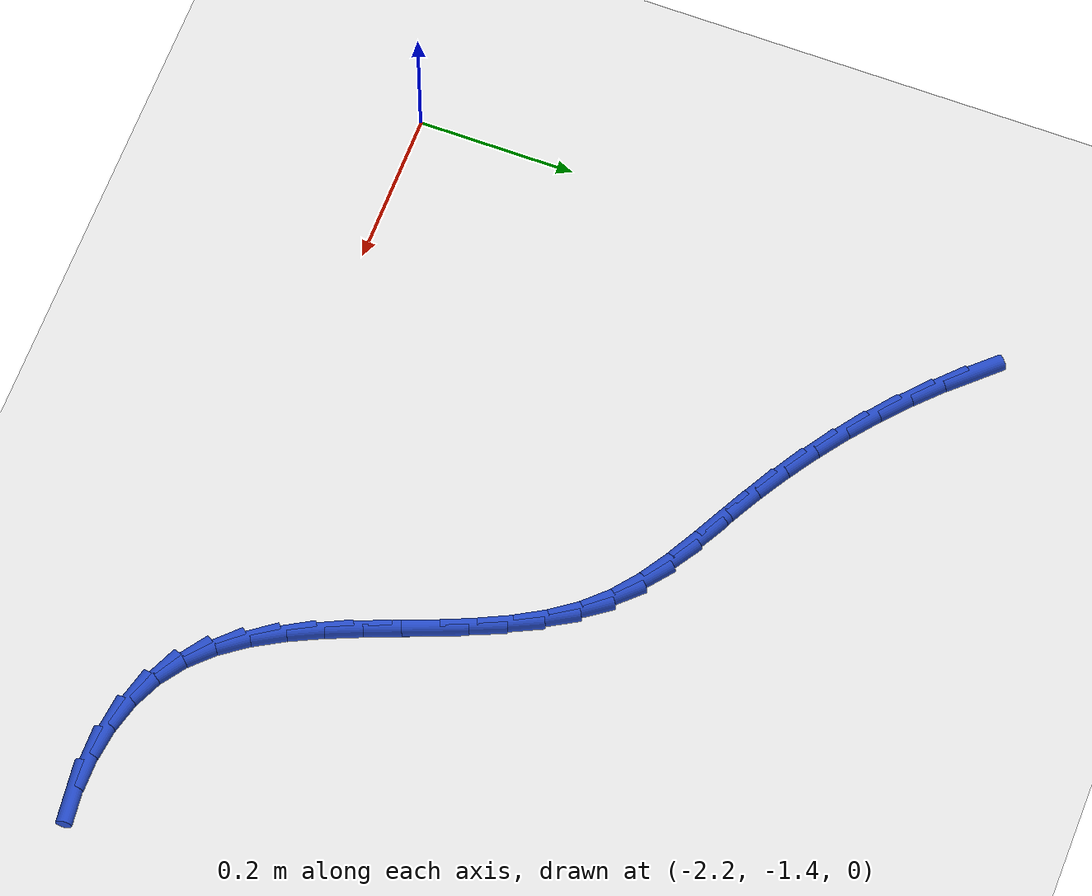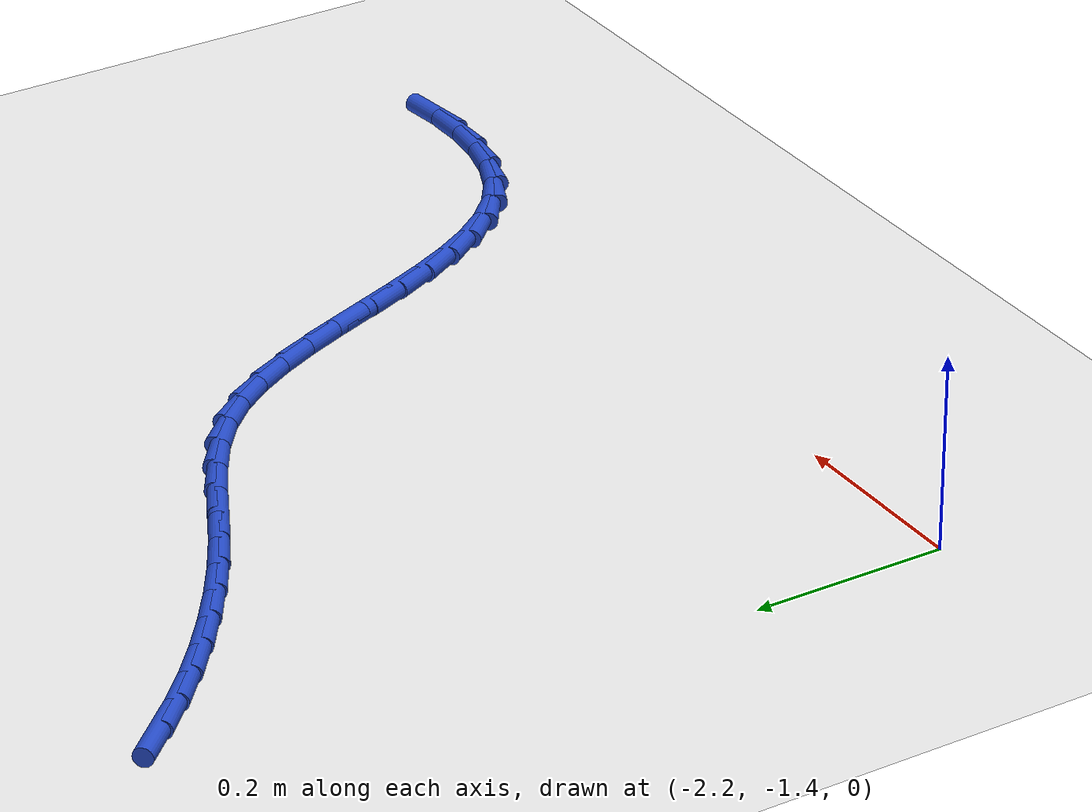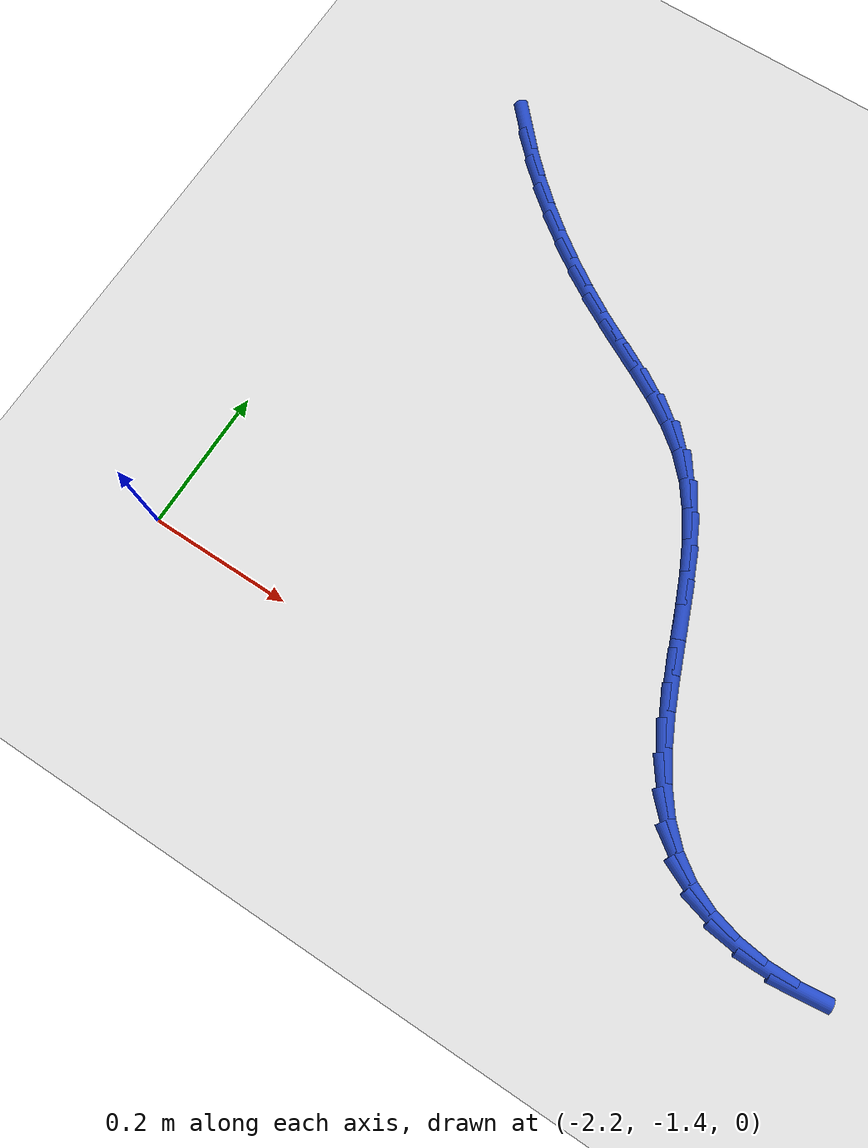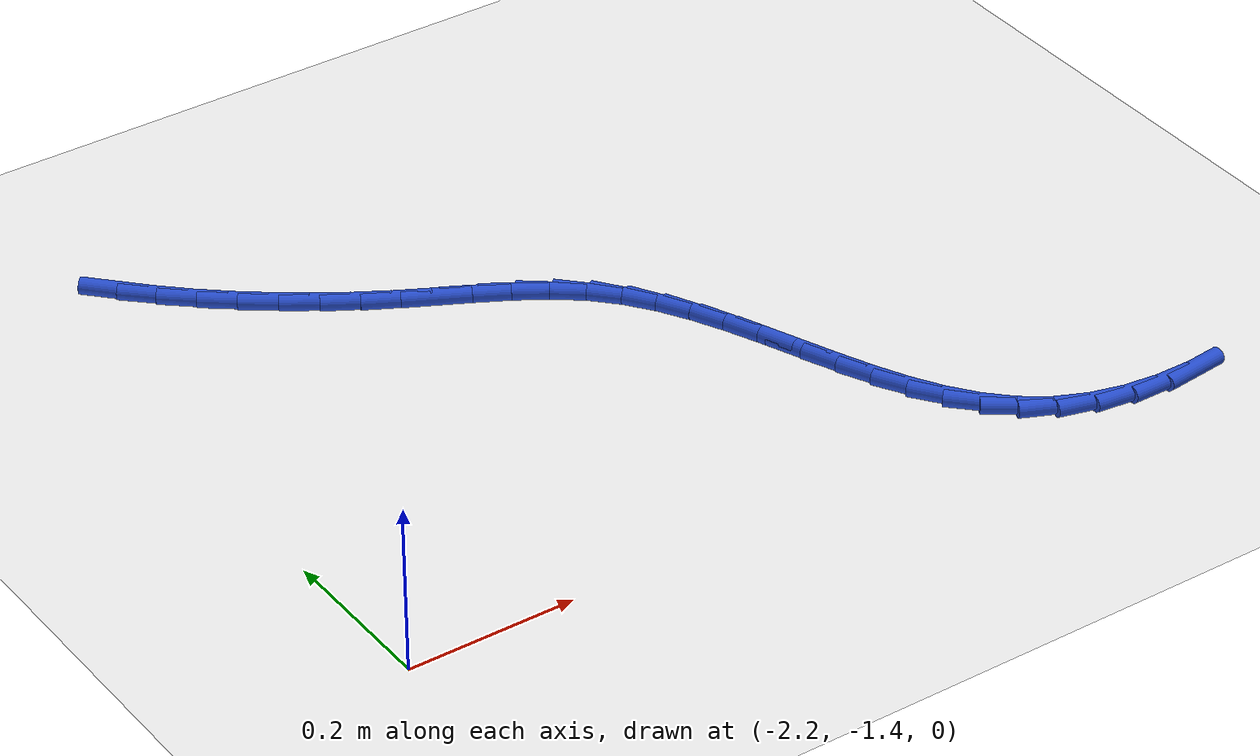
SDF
<sdf version="1.6">
 <world name="default">
  <model name="ground_plane">
   <static>1</static>
   <link name="link">
    <collision name="collision">
     <geometry><plane><normal>0 0 1</normal><size>100 100</size></plane></geometry>
     <surface><friction><ode><mu>100</mu><mu2>50</mu2></ode></friction></surface>
    </collision>
    <visual name="visual">
     <cast_shadows>0</cast_shadows>
     <geometry><plane><normal>0 0 1</normal><size>100 100</size></plane></geometry>
     <material>
      <script><uri>file://media/materials/scripts/gazebo.material</uri><name>Gazebo/WhiteGlow</name></script>
     </material>
    </visual>
   </link>
  </model>
  <model name="line">
   <link name="link_104">
    <pose>-2.1065508490633804 -0.6455041608084631 0.01 0 1.57 -0.8183769520715151</pose>
    <collision name="collision">
     <geometry><cylinder><radius>0.01</radius><length>0.08</length></cylinder></geometry>
    </collision>
    <visual name="visual">
     <material>
      <script><name>Gazebo/Blue</name><uri>file://media/materials/scripts/gazebo.material</uri></script>
     </material>
     <geometry><cylinder><radius>0.01</radius><length>0.08</length></cylinder></geometry>
    </visual>
   </link>
   <link name="link_105">
    <pose>-2.075953822564235 -0.6781889002130201 0.01 0 1.57 -0.7646697553903216</pose>
    <collision name="collision">
     <geometry><cylinder><radius>0.01</radius><length>0.08</length></cylinder></geometry>
    </collision>
    <visual name="visual">
     <material>
      <script><name>Gazebo/Blue</name><uri>file://media/materials/scripts/gazebo.material</uri></script>
     </material>
     <geometry><cylinder><radius>0.01</radius><length>0.08</length></cylinder></geometry>
    </visual>
   </link>
   <link name="link_106">
    <pose>-2.0433260640352873 -0.7094912985401228 0.01 0 1.57 -0.7142009931752987</pose>
    <collision name="collision">
     <geometry><cylinder><radius>0.01</radius><length>0.08</length></cylinder></geometry>
    </collision>
    <visual name="visual">
     <material>
      <script><name>Gazebo/Blue</name><uri>file://media/materials/scripts/gazebo.material</uri></script>
     </material>
     <geometry><cylinder><radius>0.01</radius><length>0.08</length></cylinder></geometry>
    </visual>
   </link>
   <link name="link_107">
    <pose>-2.0089268016478283 -0.7393106370503572 0.01 0 1.57 -0.6663023284555586</pose>
    <collision name="collision">
     <geometry><cylinder><radius>0.01</radius><length>0.08</length></cylinder></geometry>
    </collision>
    <visual name="visual">
     <material>
      <script><name>Gazebo/Blue</name><uri>file://media/materials/scripts/gazebo.material</uri></script>
     </material>
     <geometry><cylinder><radius>0.01</radius><length>0.08</length></cylinder></geometry>
    </visual>
   </link>
   <link name="link_108">
    <pose>-1.9730152635731528 -0.76754619700431 0.01 0 1.57 -0.6203373200466021</pose>
    <collision name="collision">
     <geometry><cylinder><radius>0.01</radius><length>0.08</length></cylinder></geometry>
    </collision>
    <visual name="visual">
     <material>
      <script><name>Gazebo/Blue</name><uri>file://media/materials/scripts/gazebo.material</uri></script>
     </material>
     <geometry><cylinder><radius>0.01</radius><length>0.08</length></cylinder></geometry>
    </visual>
   </link>
   <link name="link_109">
    <pose>-1.9358506779825528 -0.7940972596625688 0.01 0 1.57 -0.5756911222692556</pose>
    <collision name="collision">
     <geometry><cylinder><radius>0.01</radius><length>0.08</length></cylinder></geometry>
    </collision>
    <visual name="visual">
     <material>
      <script><name>Gazebo/Blue</name><uri>file://media/materials/scripts/gazebo.material</uri></script>
     </material>
     <geometry><cylinder><radius>0.01</radius><length>0.08</length></cylinder></geometry>
    </visual>
   </link>
   <link name="link_110">
    <pose>-1.8976922730473231 -0.818863106285719 0.01 0 1.57 -0.5317561357764368</pose>
    <collision name="collision">
     <geometry><cylinder><radius>0.01</radius><length>0.08</length></cylinder></geometry>
    </collision>
    <visual name="visual">
     <material>
      <script><name>Gazebo/Blue</name><uri>file://media/materials/scripts/gazebo.material</uri></script>
     </material>
     <geometry><cylinder><radius>0.01</radius><length>0.08</length></cylinder></geometry>
    </visual>
   </link>
   <link name="link_111">
    <pose>-1.858799276938755 -0.8417430181343479 0.01 0 1.57 -0.4919786350246969</pose>
    <collision name="collision">
     <geometry><cylinder><radius>0.01</radius><length>0.08</length></cylinder></geometry>
    </collision>
    <visual name="visual">
     <material>
      <script><name>Gazebo/Blue</name><uri>file://media/materials/scripts/gazebo.material</uri></script>
     </material>
     <geometry><cylinder><radius>0.01</radius><length>0.08</length></cylinder></geometry>
    </visual>
   </link>
   <link name="link_112">
    <pose>-1.8195068649801824 -0.862801094681499 0.01 0 1.57 -0.47905748285766386</pose>
    <collision name="collision">
     <geometry><cylinder><radius>0.01</radius><length>0.08</length></cylinder></geometry>
    </collision>
    <visual name="visual">
     <material>
      <script><name>Gazebo/Blue</name><uri>file://media/materials/scripts/gazebo.material</uri></script>
     </material>
     <geometry><cylinder><radius>0.01</radius><length>0.08</length></cylinder></geometry>
    </visual>
   </link>
   <link name="link_113">
    <pose>-1.7805748263372088 -0.883022919518949 0.01 0 1.57 -0.5023504802171354</pose>
    <collision name="collision">
     <geometry><cylinder><radius>0.01</radius><length>0.08</length></cylinder></geometry>
    </collision>
    <visual name="visual">
     <material>
      <script><name>Gazebo/Blue</name><uri>file://media/materials/scripts/gazebo.material</uri></script>
     </material>
     <geometry><cylinder><radius>0.01</radius><length>0.08</length></cylinder></geometry>
    </visual>
   </link>
   <link name="link_114">
    <pose>-1.7429104444274133 -0.9037141638033872 0.01 0 1.57 -0.5643702869260548</pose>
    <collision name="collision">
     <geometry><cylinder><radius>0.01</radius><length>0.08</length></cylinder></geometry>
    </collision>
    <visual name="visual">
     <material>
      <script><name>Gazebo/Blue</name><uri>file://media/materials/scripts/gazebo.material</uri></script>
     </material>
     <geometry><cylinder><radius>0.01</radius><length>0.08</length></cylinder></geometry>
    </visual>
   </link>
   <link name="link_115">
    <pose>-1.7074211497469303 -0.9261808178769327 0.01 0 1.57 -0.6676000703960445</pose>
    <collision name="collision">
     <geometry><cylinder><radius>0.01</radius><length>0.08</length></cylinder></geometry>
    </collision>
    <visual name="visual">
     <material>
      <script><name>Gazebo/Blue</name><uri>file://media/materials/scripts/gazebo.material</uri></script>
     </material>
     <geometry><cylinder><radius>0.01</radius><length>0.08</length></cylinder></geometry>
    </visual>
   </link>
   <link name="link_116">
    <pose>-1.675014372791893 -0.9517288720817023 0.01 0 1.57 -0.8086981442681749</pose>
    <collision name="collision">
     <geometry><cylinder><radius>0.01</radius><length>0.08</length></cylinder></geometry>
    </collision>
    <visual name="visual">
     <material>
      <script><name>Gazebo/Blue</name><uri>file://media/materials/scripts/gazebo.material</uri></script>
     </material>
     <geometry><cylinder><radius>0.01</radius><length>0.08</length></cylinder></geometry>
    </visual>
   </link>
   <link name="link_117">
    <pose>-1.6465287582404404 -0.981573833948397 0.01 0 1.57 -0.9454567257333134</pose>
    <collision name="collision">
     <geometry><cylinder><radius>0.01</radius><length>0.08</length></cylinder></geometry>
    </collision>
    <visual name="visual">
     <material>
      <script><name>Gazebo/Blue</name><uri>file://media/materials/scripts/gazebo.material</uri></script>
     </material>
     <geometry><cylinder><radius>0.01</radius><length>0.08</length></cylinder></geometry>
    </visual>
   </link>
   <link name="link_118">
    <pose>-1.6218785958696167 -1.0157152884144247 0.01 0 1.57 -1.0497499153755094</pose>
    <collision name="collision">
     <geometry><cylinder><radius>0.01</radius><length>0.08</length></cylinder></geometry>
    </collision>
    <visual name="visual">
     <material>
      <script><name>Gazebo/Blue</name><uri>file://media/materials/scripts/gazebo.material</uri></script>
     </material>
     <geometry><cylinder><radius>0.01</radius><length>0.08</length></cylinder></geometry>
    </visual>
   </link>
   <link name="link_119">
    <pose>-1.6003167012785815 -1.0532826985659216 0.01 0 1.57 -1.1235747946625187</pose>
    <collision name="collision">
     <geometry><cylinder><radius>0.01</radius><length>0.08</length></cylinder></geometry>
    </collision>
    <visual name="visual">
     <material>
      <script><name>Gazebo/Blue</name><uri>file://media/materials/scripts/gazebo.material</uri></script>
     </material>
     <geometry><cylinder><radius>0.01</radius><length>0.08</length></cylinder></geometry>
    </visual>
   </link>
   <link name="link_120">
    <pose>-1.581081532852161 -1.093386641603027 0.01 0 1.57 -1.170432225121151</pose>
    <collision name="collision">
     <geometry><cylinder><radius>0.01</radius><length>0.08</length></cylinder></geometry>
    </collision>
    <visual name="visual">
     <material>
      <script><name>Gazebo/Blue</name><uri>file://media/materials/scripts/gazebo.material</uri></script>
     </material>
     <geometry><cylinder><radius>0.01</radius><length>0.08</length></cylinder></geometry>
    </visual>
   </link>
   <link name="link_121">
    <pose>-1.5634115489751828 -1.1351376947258778 0.01 0 1.57 -1.1930745217170589</pose>
    <collision name="collision">
     <geometry><cylinder><radius>0.01</radius><length>0.08</length></cylinder></geometry>
    </collision>
    <visual name="visual">
     <material>
      <script><name>Gazebo/Blue</name><uri>file://media/materials/scripts/gazebo.material</uri></script>
     </material>
     <geometry><cylinder><radius>0.01</radius><length>0.08</length></cylinder></geometry>
    </visual>
   </link>
   <link name="link_122">
    <pose>-1.5465452080324726 -1.1776464351346134 0.01 0 1.57 -1.1928672365322783</pose>
    <collision name="collision">
     <geometry><cylinder><radius>0.01</radius><length>0.08</length></cylinder></geometry>
    </collision>
    <visual name="visual">
     <material>
      <script><name>Gazebo/Blue</name><uri>file://media/materials/scripts/gazebo.material</uri></script>
     </material>
     <geometry><cylinder><radius>0.01</radius><length>0.08</length></cylinder></geometry>
    </visual>
   </link>
   <link name="link_123">
    <pose>-1.529720968408858 -1.2200234400293721 0.01 0 1.57 -1.1695926246144555</pose>
    <collision name="collision">
     <geometry><cylinder><radius>0.01</radius><length>0.08</length></cylinder></geometry>
    </collision>
    <visual name="visual">
     <material>
      <script><name>Gazebo/Blue</name><uri>file://media/materials/scripts/gazebo.material</uri></script>
     </material>
     <geometry><cylinder><radius>0.01</radius><length>0.08</length></cylinder></geometry>
    </visual>
   </link>
   <link name="link_124">
    <pose>-1.512177288489165 -1.2613792866102929 0.01 0 1.57 -1.121404393563439</pose>
    <collision name="collision">
     <geometry><cylinder><radius>0.01</radius><length>0.08</length></cylinder></geometry>
    </collision>
    <visual name="visual">
     <material>
      <script><name>Gazebo/Blue</name><uri>file://media/materials/scripts/gazebo.material</uri></script>
     </material>
     <geometry><cylinder><radius>0.01</radius><length>0.08</length></cylinder></geometry>
    </visual>
   </link>
   <link name="link_125">
    <pose>-1.493152626658221 -1.300824552077514 0.01 0 1.57 -1.0449484745364694</pose>
    <collision name="collision">
     <geometry><cylinder><radius>0.01</radius><length>0.08</length></cylinder></geometry>
    </collision>
    <visual name="visual">
     <material>
      <script><name>Gazebo/Blue</name><uri>file://media/materials/scripts/gazebo.material</uri></script>
     </material>
     <geometry><cylinder><radius>0.01</radius><length>0.08</length></cylinder></geometry>
    </visual>
   </link>
   <link name="link_126">
    <pose>-1.4718854413008517 -1.3374698136311745 0.01 0 1.57 -0.9360055521727075</pose>
    <collision name="collision">
     <geometry><cylinder><radius>0.01</radius><length>0.08</length></cylinder></geometry>
    </collision>
    <visual name="visual">
     <material>
      <script><name>Gazebo/Blue</name><uri>file://media/materials/scripts/gazebo.material</uri></script>
     </material>
     <geometry><cylinder><radius>0.01</radius><length>0.08</length></cylinder></geometry>
    </visual>
   </link>
   <link name="link_127">
    <pose>-1.4476141908018847 -1.3704256484714115 0.01 0 1.57 -0.7914272501326749</pose>
    <collision name="collision">
     <geometry><cylinder><radius>0.01</radius><length>0.08</length></cylinder></geometry>
    </collision>
    <visual name="visual">
     <material>
      <script><name>Gazebo/Blue</name><uri>file://media/materials/scripts/gazebo.material</uri></script>
     </material>
     <geometry><cylinder><radius>0.01</radius><length>0.08</length></cylinder></geometry>
    </visual>
   </link>
   <link name="link_128">
    <pose>-1.4195773335461463 -1.398802633798364 0.01 0 1.57 -0.6131633680142425</pose>
    <collision name="collision">
     <geometry><cylinder><radius>0.01</radius><length>0.08</length></cylinder></geometry>
    </collision>
    <visual name="visual">
     <material>
      <script><name>Gazebo/Blue</name><uri>file://media/materials/scripts/gazebo.material</uri></script>
     </material>
     <geometry><cylinder><radius>0.01</radius><length>0.08</length></cylinder></geometry>
    </visual>
   </link>
   <link name="link_129">
    <pose>-1.3870167829130733 -1.4217134727535816 0.01 0 1.57 -0.4252042792030589</pose>
    <collision name="collision">
     <geometry><cylinder><radius>0.01</radius><length>0.08</length></cylinder></geometry>
    </collision>
    <visual name="visual">
     <material>
      <script><name>Gazebo/Blue</name><uri>file://media/materials/scripts/gazebo.material</uri></script>
     </material>
     <geometry><cylinder><radius>0.01</radius><length>0.08</length></cylinder></geometry>
    </visual>
   </link>
   <link name="link_130">
    <pose>-1.3497162473714008 -1.438604248048398 0.01 0 1.57 -0.26155066926782183</pose>
    <collision name="collision">
     <geometry><cylinder><radius>0.01</radius><length>0.08</length></cylinder></geometry>
    </collision>
    <visual name="visual">
     <material>
      <script><name>Gazebo/Blue</name><uri>file://media/materials/scripts/gazebo.material</uri></script>
     </material>
     <geometry><cylinder><radius>0.01</radius><length>0.08</length></cylinder></geometry>
    </visual>
   </link>
   <link name="link_131">
    <pose>-1.308585837243135 -1.4496141445884316 0.01 0 1.57 -0.12134631325657098</pose>
    <collision name="collision">
     <geometry><cylinder><radius>0.01</radius><length>0.08</length></cylinder></geometry>
    </collision>
    <visual name="visual">
     <material>
      <script><name>Gazebo/Blue</name><uri>file://media/materials/scripts/gazebo.material</uri></script>
     </material>
     <geometry><cylinder><radius>0.01</radius><length>0.08</length></cylinder></geometry>
    </visual>
   </link>
   <link name="link_132">
    <pose>-1.2646760667840433 -1.4549687412019439 0.01 0 1.57 0.0016460713010539784</pose>
    <collision name="collision">
     <geometry><cylinder><radius>0.01</radius><length>0.08</length></cylinder></geometry>
    </collision>
    <visual name="visual">
     <material>
      <script><name>Gazebo/Blue</name><uri>file://media/materials/scripts/gazebo.material</uri></script>
     </material>
     <geometry><cylinder><radius>0.01</radius><length>0.08</length></cylinder></geometry>
    </visual>
   </link>
   <link name="link_133">
    <pose>-1.21903745024989 -1.454893616717196 0.01 0 1.57 0.11349152370685066</pose>
    <collision name="collision">
     <geometry><cylinder><radius>0.01</radius><length>0.08</length></cylinder></geometry>
    </collision>
    <visual name="visual">
     <material>
      <script><name>Gazebo/Blue</name><uri>file://media/materials/scripts/gazebo.material</uri></script>
     </material>
     <geometry><cylinder><radius>0.01</radius><length>0.08</length></cylinder></geometry>
    </visual>
   </link>
  </model>
 </world>
</sdf>
